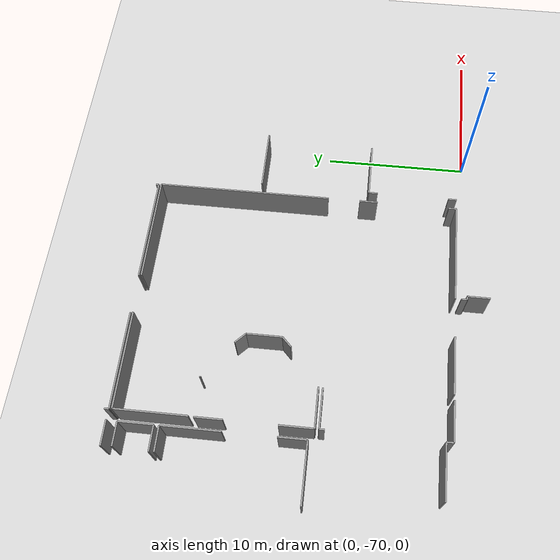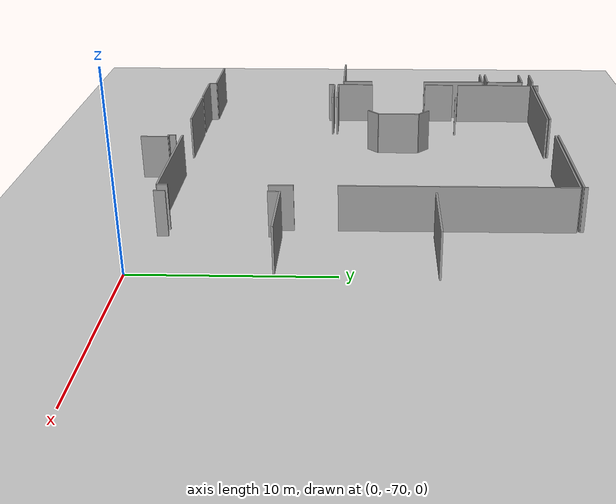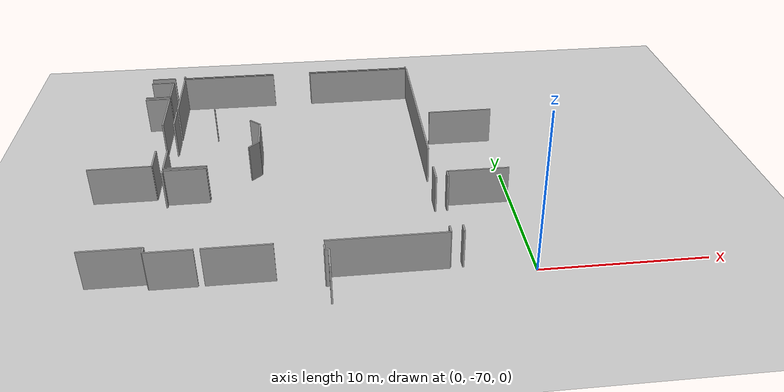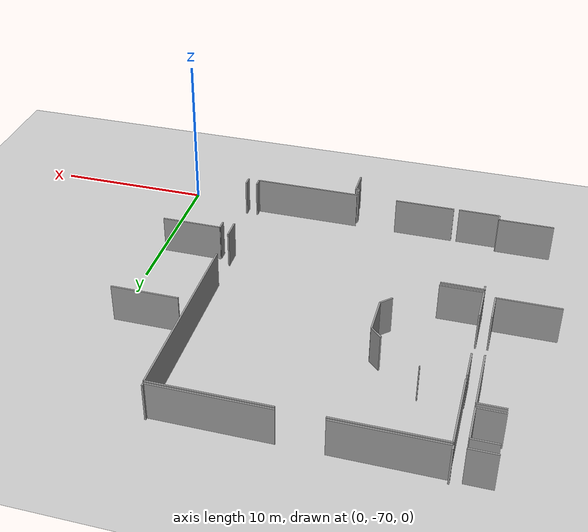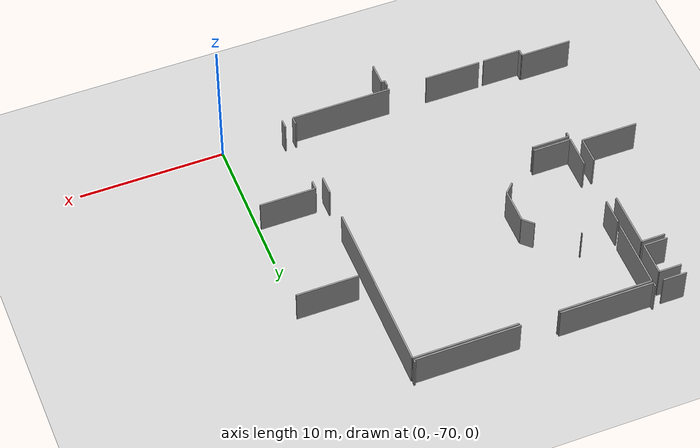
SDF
<sdf version="1.6">
 <world name="default">
  <model name="ground_plane">
   <static>1</static>
   <link name="link">
    <collision name="collision">
     <geometry><plane><normal>0 0 1</normal><size>100 100</size></plane></geometry>
     <surface><friction><ode><mu>100</mu><mu2>50</mu2></ode></friction></surface>
    </collision>
    <visual name="visual">
     <cast_shadows>0</cast_shadows>
     <geometry><plane><normal>0 0 1</normal><size>100 100</size></plane></geometry>
     <material>
      <script><uri>file://media/materials/scripts/gazebo.material</uri><name>Gazebo/Grey</name></script>
     </material>
    </visual>
   </link>
  </model>
  <model name="0510045925_40">
   <static>1</static>
   <link name="Wall_1314">
    <collision name="Wall_1314_Collision">
     <geometry><box><size>1.633968681 0.1 2.5</size></box></geometry>
     <pose>0.816984340499 0 1.25 0 0 0</pose>
    </collision>
    <visual name="Wall_1314_Visual">
     <pose>0.816984340499 0 1.25 0 0 0</pose>
     <geometry><box><size>1.633968681 0.1 2.5</size></box></geometry>
     <material>
      <script><uri>file://media/materials/scripts/gazebo.material</uri><name>Gazebo/Grey</name></script>
      <ambient>1 1 1 1</ambient>
     </material>
    </visual>
    <pose>112.01522804 -149.007309459 0 0 0 3.14159265359</pose>
   </link>
   <link name="Wall_1355">
    <collision name="Wall_1355_Collision">
     <geometry><box><size>1.63802949164 0.1 2.5</size></box></geometry>
     <pose>0.819014745819 0 1.25 0 0 0</pose>
    </collision>
    <visual name="Wall_1355_Visual">
     <pose>0.819014745819 0 1.25 0 0 0</pose>
     <geometry><box><size>1.63802949164 0.1 2.5</size></box></geometry>
     <material>
      <script><uri>file://media/materials/scripts/gazebo.material</uri><name>Gazebo/Grey</name></script>
      <ambient>1 1 1 1</ambient>
     </material>
    </visual>
    <pose>110.331260628 -152.322707545 0 0 0 0.0</pose>
   </link>
   <link name="Wall_1356">
    <collision name="Wall_1356_Collision">
     <geometry><box><size>3.8719829446 0.1 2.5</size></box></geometry>
     <pose>1.9359914723 0 1.25 0 0 0</pose>
    </collision>
    <visual name="Wall_1356_Visual">
     <pose>1.9359914723 0 1.25 0 0 0</pose>
     <geometry><box><size>3.8719829446 0.1 2.5</size></box></geometry>
     <material>
      <script><uri>file://media/materials/scripts/gazebo.material</uri><name>Gazebo/Grey</name></script>
      <ambient>1 1 1 1</ambient>
     </material>
    </visual>
    <pose>111.96929012 -152.322707545 0 0 0 -1.57079632679</pose>
   </link>
   <link name="Wall_1357">
    <collision name="Wall_1357_Collision">
     <geometry><box><size>1.85883607015 0.1 2.5</size></box></geometry>
     <pose>0.929418035075 0 1.25 0 0 0</pose>
    </collision>
    <visual name="Wall_1357_Visual">
     <pose>0.929418035075 0 1.25 0 0 0</pose>
     <geometry><box><size>1.85883607015 0.1 2.5</size></box></geometry>
     <material>
      <script><uri>file://media/materials/scripts/gazebo.material</uri><name>Gazebo/Grey</name></script>
      <ambient>1 1 1 1</ambient>
     </material>
    </visual>
    <pose>111.96929012 -159.629374889 0 0 0 -1.57079632679</pose>
   </link>
   <link name="Wall_1358">
    <collision name="Wall_1358_Collision">
     <geometry><box><size>3.9016776224 0.1 2.5</size></box></geometry>
     <pose>1.9508388112 0 1.25 0 0 0</pose>
    </collision>
    <visual name="Wall_1358_Visual">
     <pose>1.9508388112 0 1.25 0 0 0</pose>
     <geometry><box><size>3.9016776224 0.1 2.5</size></box></geometry>
     <material>
      <script><uri>file://media/materials/scripts/gazebo.material</uri><name>Gazebo/Grey</name></script>
      <ambient>1 1 1 1</ambient>
     </material>
    </visual>
    <pose>111.96929012 -161.488210959 0 0 0 3.14159265359</pose>
   </link>
   <link name="Wall_1363">
    <collision name="Wall_1363_Collision">
     <geometry><box><size>1.55021446156 0.1 2.5</size></box></geometry>
     <pose>0.775107230781 0 1.25 0 0 0</pose>
    </collision>
    <visual name="Wall_1363_Visual">
     <pose>0.775107230781 0 1.25 0 0 0</pose>
     <geometry><box><size>1.55021446156 0.1 2.5</size></box></geometry>
     <material>
      <script><uri>file://media/materials/scripts/gazebo.material</uri><name>Gazebo/Grey</name></script>
      <ambient>1 1 1 1</ambient>
     </material>
    </visual>
    <pose>110.420344661 -149.707799294 0 0 0 0.0</pose>
   </link>
   <link name="Wall_1364">
    <collision name="Wall_1364_Collision">
     <geometry><box><size>2.27659196467 0.1 2.5</size></box></geometry>
     <pose>1.13829598234 0 1.25 0 0 0</pose>
    </collision>
    <visual name="Wall_1364_Visual">
     <pose>1.13829598234 0 1.25 0 0 0</pose>
     <geometry><box><size>2.27659196467 0.1 2.5</size></box></geometry>
     <material>
      <script><uri>file://media/materials/scripts/gazebo.material</uri><name>Gazebo/Grey</name></script>
      <ambient>1 1 1 1</ambient>
     </material>
    </visual>
    <pose>111.970559123 -149.707799294 0 0 0 -1.57079632679</pose>
   </link>
   <link name="Wall_1365">
    <collision name="Wall_1365_Collision">
     <geometry><box><size>1.65452653486 0.1 2.5</size></box></geometry>
     <pose>0.82726326743 0 1.25 0 0 0</pose>
    </collision>
    <visual name="Wall_1365_Visual">
     <pose>0.82726326743 0 1.25 0 0 0</pose>
     <geometry><box><size>1.65452653486 0.1 2.5</size></box></geometry>
     <material>
      <script><uri>file://media/materials/scripts/gazebo.material</uri><name>Gazebo/Grey</name></script>
      <ambient>1 1 1 1</ambient>
     </material>
    </visual>
    <pose>111.970559123 -151.984391259 0 0 0 3.14159265359</pose>
   </link>
   <link name="Wall_1367">
    <collision name="Wall_1367_Collision">
     <geometry><box><size>2.25476510748 0.1 2.5</size></box></geometry>
     <pose>1.12738255374 0 1.25 0 0 0</pose>
    </collision>
    <visual name="Wall_1367_Visual">
     <pose>1.12738255374 0 1.25 0 0 0</pose>
     <geometry><box><size>2.25476510748 0.1 2.5</size></box></geometry>
     <material>
      <script><uri>file://media/materials/scripts/gazebo.material</uri><name>Gazebo/Grey</name></script>
      <ambient>1 1 1 1</ambient>
     </material>
    </visual>
    <pose>112.69084541 -161.846069897 0 0 0 1.57079632679</pose>
   </link>
   <link name="Wall_1368">
    <collision name="Wall_1368_Collision">
     <geometry><box><size>1.81797416309 0.1 2.5</size></box></geometry>
     <pose>0.908987081546 0 1.25 0 0 0</pose>
    </collision>
    <visual name="Wall_1368_Visual">
     <pose>0.908987081546 0 1.25 0 0 0</pose>
     <geometry><box><size>1.81797416309 0.1 2.5</size></box></geometry>
     <material>
      <script><uri>file://media/materials/scripts/gazebo.material</uri><name>Gazebo/Grey</name></script>
      <ambient>1 1 1 1</ambient>
     </material>
    </visual>
    <pose>112.69084541 -156.149513972 0 0 0 1.57079632679</pose>
   </link>
   <link name="Wall_1369">
    <collision name="Wall_1369_Collision">
     <geometry><box><size>0.0644653688993 0.1 2.5</size></box></geometry>
     <pose>0.0322326844496 0 1.25 0 0 0</pose>
    </collision>
    <visual name="Wall_1369_Visual">
     <pose>0.0322326844496 0 1.25 0 0 0</pose>
     <geometry><box><size>0.0644653688993 0.1 2.5</size></box></geometry>
     <material>
      <script><uri>file://media/materials/scripts/gazebo.material</uri><name>Gazebo/Grey</name></script>
      <ambient>1 1 1 1</ambient>
     </material>
    </visual>
    <pose>115.227583056 -154.331539809 0 0 0 0.0</pose>
   </link>
   <link name="Wall_1370">
    <collision name="Wall_1370_Collision">
     <geometry><box><size>2.6443901004 0.1 2.5</size></box></geometry>
     <pose>1.3221950502 0 1.25 0 0 0</pose>
    </collision>
    <visual name="Wall_1370_Visual">
     <pose>1.3221950502 0 1.25 0 0 0</pose>
     <geometry><box><size>2.6443901004 0.1 2.5</size></box></geometry>
     <material>
      <script><uri>file://media/materials/scripts/gazebo.material</uri><name>Gazebo/Grey</name></script>
      <ambient>1 1 1 1</ambient>
     </material>
    </visual>
    <pose>115.335194538 -161.831349458 0 0 0 -3.13602595804</pose>
   </link>
   <link name="Wall_1418">
    <collision name="Wall_1418_Collision">
     <geometry><box><size>0.197710718002 0.1 2.5</size></box></geometry>
     <pose>0.098855359001 0 1.25 0 0 0</pose>
    </collision>
    <visual name="Wall_1418_Visual">
     <pose>0.098855359001 0 1.25 0 0 0</pose>
     <geometry><box><size>0.197710718002 0.1 2.5</size></box></geometry>
     <material>
      <script><uri>file://media/materials/scripts/gazebo.material</uri><name>Gazebo/Grey</name></script>
      <ambient>1 1 1 1</ambient>
     </material>
    </visual>
    <pose>129.096012792 -148.843861831 0 0 0 -1.57079632679</pose>
   </link>
   <link name="Wall_1419">
    <collision name="Wall_1419_Collision">
     <geometry><box><size>7.24753178853 0.1 2.5</size></box></geometry>
     <pose>3.62376589427 0 1.25 0 0 0</pose>
    </collision>
    <visual name="Wall_1419_Visual">
     <pose>3.62376589427 0 1.25 0 0 0</pose>
     <geometry><box><size>7.24753178853 0.1 2.5</size></box></geometry>
     <material>
      <script><uri>file://media/materials/scripts/gazebo.material</uri><name>Gazebo/Grey</name></script>
      <ambient>1 1 1 1</ambient>
     </material>
    </visual>
    <pose>129.096012792 -149.041572549 0 0 0 3.14159265359</pose>
   </link>
   <link name="Wall_1420">
    <collision name="Wall_1420_Collision">
     <geometry><box><size>6.47648536839 0.1 2.5</size></box></geometry>
     <pose>3.2382426842 0 1.25 0 0 0</pose>
    </collision>
    <visual name="Wall_1420_Visual">
     <pose>3.2382426842 0 1.25 0 0 0</pose>
     <geometry><box><size>6.47648536839 0.1 2.5</size></box></geometry>
     <material>
      <script><uri>file://media/materials/scripts/gazebo.material</uri><name>Gazebo/Grey</name></script>
      <ambient>1 1 1 1</ambient>
     </material>
    </visual>
    <pose>119.153625542 -149.041572549 0 0 0 3.14159265359</pose>
   </link>
   <link name="Wall_1421">
    <collision name="Wall_1421_Collision">
     <geometry><box><size>0.309383010583 0.1 2.5</size></box></geometry>
     <pose>0.154691505292 0 1.25 0 0 0</pose>
    </collision>
    <visual name="Wall_1421_Visual">
     <pose>0.154691505292 0 1.25 0 0 0</pose>
     <geometry><box><size>0.309383010583 0.1 2.5</size></box></geometry>
     <material>
      <script><uri>file://media/materials/scripts/gazebo.material</uri><name>Gazebo/Grey</name></script>
      <ambient>1 1 1 1</ambient>
     </material>
    </visual>
    <pose>112.677140174 -149.041572549 0 0 0 1.57079632679</pose>
   </link>
   <link name="Wall_1423">
    <collision name="Wall_1423_Collision">
     <geometry><box><size>0.88101464045 0.1 2.5</size></box></geometry>
     <pose>0.440507320225 0 1.25 0 0 0</pose>
    </collision>
    <visual name="Wall_1423_Visual">
     <pose>0.440507320225 0 1.25 0 0 0</pose>
     <geometry><box><size>0.88101464045 0.1 2.5</size></box></geometry>
     <material>
      <script><uri>file://media/materials/scripts/gazebo.material</uri><name>Gazebo/Grey</name></script>
      <ambient>1 1 1 1</ambient>
     </material>
    </visual>
    <pose>117.785893759 -159.832923022 0 0 0 0.777861129505</pose>
   </link>
   <link name="Wall_1424">
    <collision name="Wall_1424_Collision">
     <geometry><box><size>2.39384787188 0.1 2.5</size></box></geometry>
     <pose>1.19692393594 0 1.25 0 0 0</pose>
    </collision>
    <visual name="Wall_1424_Visual">
     <pose>1.19692393594 0 1.25 0 0 0</pose>
     <geometry><box><size>2.39384787188 0.1 2.5</size></box></geometry>
     <material>
      <script><uri>file://media/materials/scripts/gazebo.material</uri><name>Gazebo/Grey</name></script>
      <ambient>1 1 1 1</ambient>
     </material>
    </visual>
    <pose>118.413542803 -159.214664602 0 0 0 1.57079632679</pose>
   </link>
   <link name="Wall_1425">
    <collision name="Wall_1425_Collision">
     <geometry><box><size>0.923754825408 0.1 2.5</size></box></geometry>
     <pose>0.461877412704 0 1.25 0 0 0</pose>
    </collision>
    <visual name="Wall_1425_Visual">
     <pose>0.461877412704 0 1.25 0 0 0</pose>
     <geometry><box><size>0.923754825408 0.1 2.5</size></box></geometry>
     <material>
      <script><uri>file://media/materials/scripts/gazebo.material</uri><name>Gazebo/Grey</name></script>
      <ambient>1 1 1 1</ambient>
     </material>
    </visual>
    <pose>118.413542803 -156.820816731 0 0 0 2.3668799199</pose>
   </link>
   <link name="Wall_1426">
    <collision name="Wall_1426_Collision">
     <geometry><box><size>4.78439633512 0.1 2.5</size></box></geometry>
     <pose>2.39219816756 0 1.25 0 0 0</pose>
    </collision>
    <visual name="Wall_1426_Visual">
     <pose>2.39219816756 0 1.25 0 0 0</pose>
     <geometry><box><size>4.78439633512 0.1 2.5</size></box></geometry>
     <material>
      <script><uri>file://media/materials/scripts/gazebo.material</uri><name>Gazebo/Grey</name></script>
      <ambient>1 1 1 1</ambient>
     </material>
    </visual>
    <pose>112.718002081 -154.001345144 0 0 0 1.57079632679</pose>
   </link>
   <link name="Wall_1427">
    <collision name="Wall_1427_Collision">
     <geometry><box><size>6.47547016573 0.1 2.5</size></box></geometry>
     <pose>3.23773508287 0 1.25 0 0 0</pose>
    </collision>
    <visual name="Wall_1427_Visual">
     <pose>3.23773508287 0 1.25 0 0 0</pose>
     <geometry><box><size>6.47547016573 0.1 2.5</size></box></geometry>
     <material>
      <script><uri>file://media/materials/scripts/gazebo.material</uri><name>Gazebo/Grey</name></script>
      <ambient>1 1 1 1</ambient>
     </material>
    </visual>
    <pose>112.718002081 -149.216948808 0 0 0 0.0</pose>
   </link>
   <link name="Wall_1428">
    <collision name="Wall_1428_Collision">
     <geometry><box><size>7.24245577523 0.1 2.5</size></box></geometry>
     <pose>3.62122788762 0 1.25 0 0 0</pose>
    </collision>
    <visual name="Wall_1428_Visual">
     <pose>3.62122788762 0 1.25 0 0 0</pose>
     <geometry><box><size>7.24245577523 0.1 2.5</size></box></geometry>
     <material>
      <script><uri>file://media/materials/scripts/gazebo.material</uri><name>Gazebo/Grey</name></script>
      <ambient>1 1 1 1</ambient>
     </material>
    </visual>
    <pose>121.898225933 -149.216948808 0 0 0 0.0</pose>
   </link>
   <link name="Wall_1429">
    <collision name="Wall_1429_Collision">
     <geometry><box><size>12.0644146088 0.1 2.5</size></box></geometry>
     <pose>6.03220730438 0 1.25 0 0 0</pose>
    </collision>
    <visual name="Wall_1429_Visual">
     <pose>6.03220730438 0 1.25 0 0 0</pose>
     <geometry><box><size>12.0644146088 0.1 2.5</size></box></geometry>
     <material>
      <script><uri>file://media/materials/scripts/gazebo.material</uri><name>Gazebo/Grey</name></script>
      <ambient>1 1 1 1</ambient>
     </material>
    </visual>
    <pose>129.140681709 -149.216948808 0 0 0 -1.57079632679</pose>
   </link>
   <link name="Wall_1430">
    <collision name="Wall_1430_Collision">
     <geometry><box><size>1.26798812213 0.1 2.5</size></box></geometry>
     <pose>0.633994061064 0 1.25 0 0 0</pose>
    </collision>
    <visual name="Wall_1430_Visual">
     <pose>0.633994061064 0 1.25 0 0 0</pose>
     <geometry><box><size>1.26798812213 0.1 2.5</size></box></geometry>
     <material>
      <script><uri>file://media/materials/scripts/gazebo.material</uri><name>Gazebo/Grey</name></script>
      <ambient>1 1 1 1</ambient>
     </material>
    </visual>
    <pose>129.140681709 -163.502119236 0 0 0 -1.57079632679</pose>
   </link>
   <link name="Wall_1431">
    <collision name="Wall_1431_Collision">
     <geometry><box><size>0.54110301769 0.1 2.5</size></box></geometry>
     <pose>0.270551508845 0 1.25 0 0 0</pose>
    </collision>
    <visual name="Wall_1431_Visual">
     <pose>0.270551508845 0 1.25 0 0 0</pose>
     <geometry><box><size>0.54110301769 0.1 2.5</size></box></geometry>
     <material>
      <script><uri>file://media/materials/scripts/gazebo.material</uri><name>Gazebo/Grey</name></script>
      <ambient>1 1 1 1</ambient>
     </material>
    </visual>
    <pose>129.140681709 -169.807035354 0 0 0 -1.57079632679</pose>
   </link>
   <link name="Wall_1432">
    <collision name="Wall_1432_Collision">
     <geometry><box><size>6.92723534936 0.1 2.5</size></box></geometry>
     <pose>3.46361767468 0 1.25 0 0 0</pose>
    </collision>
    <visual name="Wall_1432_Visual">
     <pose>3.46361767468 0 1.25 0 0 0</pose>
     <geometry><box><size>6.92723534936 0.1 2.5</size></box></geometry>
     <material>
      <script><uri>file://media/materials/scripts/gazebo.material</uri><name>Gazebo/Grey</name></script>
      <ambient>1 1 1 1</ambient>
     </material>
    </visual>
    <pose>129.140681709 -170.348138372 0 0 0 3.14159265359</pose>
   </link>
   <link name="Wall_1433">
    <collision name="Wall_1433_Collision">
     <geometry><box><size>3.87680515723 0.1 2.5</size></box></geometry>
     <pose>1.93840257861 0 1.25 0 0 0</pose>
    </collision>
    <visual name="Wall_1433_Visual">
     <pose>1.93840257861 0 1.25 0 0 0</pose>
     <geometry><box><size>3.87680515723 0.1 2.5</size></box></geometry>
     <material>
      <script><uri>file://media/materials/scripts/gazebo.material</uri><name>Gazebo/Grey</name></script>
      <ambient>1 1 1 1</ambient>
     </material>
    </visual>
    <pose>119.526204919 -170.348138372 0 0 0 3.14159265359</pose>
   </link>
   <link name="Wall_1435">
    <collision name="Wall_1435_Collision">
     <geometry><box><size>0.344915103678 0.1 2.5</size></box></geometry>
     <pose>0.172457551839 0 1.25 0 0 0</pose>
    </collision>
    <visual name="Wall_1435_Visual">
     <pose>0.172457551839 0 1.25 0 0 0</pose>
     <geometry><box><size>0.344915103678 0.1 2.5</size></box></geometry>
     <material>
      <script><uri>file://media/materials/scripts/gazebo.material</uri><name>Gazebo/Grey</name></script>
      <ambient>1 1 1 1</ambient>
     </material>
    </visual>
    <pose>112.687799802 -162.460775107 0 0 0 1.57079632679</pose>
   </link>
   <link name="Wall_1436">
    <collision name="Wall_1436_Collision">
     <geometry><box><size>2.62150706835 0.1 2.5</size></box></geometry>
     <pose>1.31075353417 0 1.25 0 0 0</pose>
    </collision>
    <visual name="Wall_1436_Visual">
     <pose>1.31075353417 0 1.25 0 0 0</pose>
     <geometry><box><size>2.62150706835 0.1 2.5</size></box></geometry>
     <material>
      <script><uri>file://media/materials/scripts/gazebo.material</uri><name>Gazebo/Grey</name></script>
      <ambient>1 1 1 1</ambient>
     </material>
    </visual>
    <pose>112.687799802 -162.115860004 0 0 0 0.0</pose>
   </link>
   <link name="Wall_1437">
    <collision name="Wall_1437_Collision">
     <geometry><box><size>2.65120174615 0.1 2.5</size></box></geometry>
     <pose>1.32560087307 0 1.25 0 0 0</pose>
    </collision>
    <visual name="Wall_1437_Visual">
     <pose>1.32560087307 0 1.25 0 0 0</pose>
     <geometry><box><size>2.65120174615 0.1 2.5</size></box></geometry>
     <material>
      <script><uri>file://media/materials/scripts/gazebo.material</uri><name>Gazebo/Grey</name></script>
      <ambient>1 1 1 1</ambient>
     </material>
    </visual>
    <pose>115.30930687 -170.36260501 0 0 0 3.14159265359</pose>
   </link>
   <link name="Wall_1438">
    <collision name="Wall_1438_Collision">
     <geometry><box><size>0.467754625517 0.1 2.5</size></box></geometry>
     <pose>0.233877312759 0 1.25 0 0 0</pose>
    </collision>
    <visual name="Wall_1438_Visual">
     <pose>0.233877312759 0 1.25 0 0 0</pose>
     <geometry><box><size>0.467754625517 0.1 2.5</size></box></geometry>
     <material>
      <script><uri>file://media/materials/scripts/gazebo.material</uri><name>Gazebo/Grey</name></script>
      <ambient>1 1 1 1</ambient>
     </material>
    </visual>
    <pose>112.658105124 -170.36260501 0 0 0 1.57079632679</pose>
   </link>
   <link name="Wall_1439">
    <collision name="Wall_1439_Collision">
     <geometry><box><size>3.5242760336 0.1 2.5</size></box></geometry>
     <pose>1.7621380168 0 1.25 0 0 0</pose>
    </collision>
    <visual name="Wall_1439_Visual">
     <pose>1.7621380168 0 1.25 0 0 0</pose>
     <geometry><box><size>3.5242760336 0.1 2.5</size></box></geometry>
     <material>
      <script><uri>file://media/materials/scripts/gazebo.material</uri><name>Gazebo/Grey</name></script>
      <ambient>1 1 1 1</ambient>
     </material>
    </visual>
    <pose>112.658105124 -169.894850385 0 0 0 3.14159265359</pose>
   </link>
   <link name="Wall_1441">
    <collision name="Wall_1441_Collision">
     <geometry><box><size>4.26512017461 0.1 2.5</size></box></geometry>
     <pose>2.13256008731 0 1.25 0 0 0</pose>
    </collision>
    <visual name="Wall_1441_Visual">
     <pose>2.13256008731 0 1.25 0 0 0</pose>
     <geometry><box><size>4.26512017461 0.1 2.5</size></box></geometry>
     <material>
      <script><uri>file://media/materials/scripts/gazebo.material</uri><name>Gazebo/Grey</name></script>
      <ambient>1 1 1 1</ambient>
     </material>
    </visual>
    <pose>129.884063856 -156.414481866 0 0 0 0.0</pose>
   </link>
   <link name="Wall_1454">
    <collision name="Wall_1454_Collision">
     <geometry><box><size>3.86792213396 0.1 2.5</size></box></geometry>
     <pose>1.93396106698 0 1.25 0 0 0</pose>
    </collision>
    <visual name="Wall_1454_Visual">
     <pose>1.93396106698 0 1.25 0 0 0</pose>
     <geometry><box><size>3.86792213396 0.1 2.5</size></box></geometry>
     <material>
      <script><uri>file://media/materials/scripts/gazebo.material</uri><name>Gazebo/Grey</name></script>
      <ambient>1 1 1 1</ambient>
     </material>
    </visual>
    <pose>129.891170275 -164.115301642 0 0 0 0.0</pose>
   </link>
   <link name="Wall_1458">
    <collision name="Wall_1458_Collision">
     <geometry><box><size>0.590086546027 0.1 2.5</size></box></geometry>
     <pose>0.295043273013 0 1.25 0 0 0</pose>
    </collision>
    <visual name="Wall_1458_Visual">
     <pose>0.295043273013 0 1.25 0 0 0</pose>
     <geometry><box><size>0.590086546027 0.1 2.5</size></box></geometry>
     <material>
      <script><uri>file://media/materials/scripts/gazebo.material</uri><name>Gazebo/Grey</name></script>
      <ambient>1 1 1 1</ambient>
     </material>
    </visual>
    <pose>129.890662674 -170.361082206 0 0 0 1.57079632679</pose>
   </link>
   <link name="Wall_1459">
    <collision name="Wall_1459_Collision">
     <geometry><box><size>0.61952763111 0.1 2.5</size></box></geometry>
     <pose>0.309763815555 0 1.25 0 0 0</pose>
    </collision>
    <visual name="Wall_1459_Visual">
     <pose>0.309763815555 0 1.25 0 0 0</pose>
     <geometry><box><size>0.61952763111 0.1 2.5</size></box></geometry>
     <material>
      <script><uri>file://media/materials/scripts/gazebo.material</uri><name>Gazebo/Grey</name></script>
      <ambient>1 1 1 1</ambient>
     </material>
    </visual>
    <pose>129.890662674 -164.734829065 0 0 0 1.56997699064</pose>
   </link>
   <link name="Wall_1471">
    <collision name="Wall_1471_Collision">
     <geometry><box><size>0.401005050633 0.1 2.5</size></box></geometry>
     <pose>0.200502525317 0 1.25 0 0 0</pose>
    </collision>
    <visual name="Wall_1471_Visual">
     <pose>0.200502525317 0 1.25 0 0 0</pose>
     <geometry><box><size>0.401005050633 0.1 2.5</size></box></geometry>
     <material>
      <script><uri>file://media/materials/scripts/gazebo.material</uri><name>Gazebo/Grey</name></script>
      <ambient>1 1 1 1</ambient>
     </material>
    </visual>
    <pose>122.219791376 -170.735691988 0 0 0 -1.57079632679</pose>
   </link>
   <link name="Wall_1472">
    <collision name="Wall_1472_Collision">
     <geometry><box><size>0.235273216416 0.1 2.5</size></box></geometry>
     <pose>0.117636608208 0 1.25 0 0 0</pose>
    </collision>
    <visual name="Wall_1472_Visual">
     <pose>0.117636608208 0 1.25 0 0 0</pose>
     <geometry><box><size>0.235273216416 0.1 2.5</size></box></geometry>
     <material>
      <script><uri>file://media/materials/scripts/gazebo.material</uri><name>Gazebo/Grey</name></script>
      <ambient>1 1 1 1</ambient>
     </material>
    </visual>
    <pose>122.219791376 -171.136697038 0 0 0 0.0</pose>
   </link>
   <link name="Wall_1473">
    <collision name="Wall_1473_Collision">
     <geometry><box><size>1.53524022233 0.1 2.5</size></box></geometry>
     <pose>0.767620111165 0 1.25 0 0 0</pose>
    </collision>
    <visual name="Wall_1473_Visual">
     <pose>0.767620111165 0 1.25 0 0 0</pose>
     <geometry><box><size>1.53524022233 0.1 2.5</size></box></geometry>
     <material>
      <script><uri>file://media/materials/scripts/gazebo.material</uri><name>Gazebo/Grey</name></script>
      <ambient>1 1 1 1</ambient>
     </material>
    </visual>
    <pose>122.455064592 -171.136697038 0 0 0 -1.57079632679</pose>
   </link>
   <pose>-133.95 101.083118449 0 0 0 0</pose>
  </model>
 </world>
</sdf>
